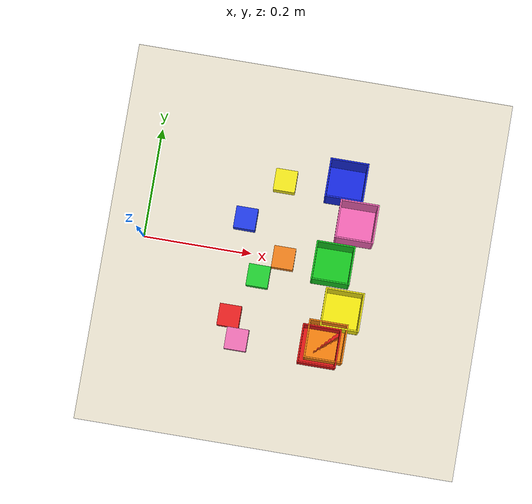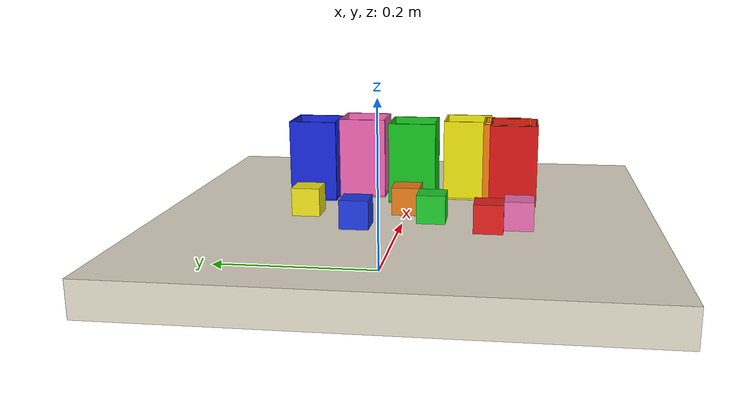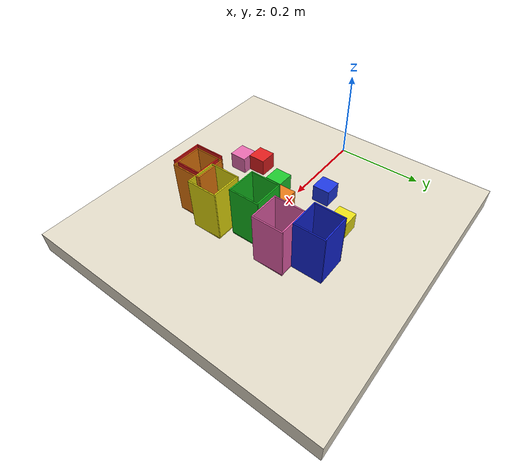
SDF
<?xml version="1.0" ?>
<sdf version="1.6">
<world name="pick_place_world">

  <!-- ════════════════════════════════════════════════════
       工作台
       70cm × 70cm × 5cm，桌面顶面位于 z=0
       pose z=-0.025 使桌体下沿在 z=-0.05
  ════════════════════════════════════════════════════ -->
  <model name="workspace_table">
    <static>true</static>
    <pose>0.28 0.0 -0.025 0 0 0</pose>
    <link name="link">
      <visual name="v">
        <geometry><box><size>0.70 0.70 0.05</size></box></geometry>
        <material>
          <ambient>0.88 0.85 0.78 1</ambient>
          <diffuse>0.88 0.85 0.78 1</diffuse>
          <specular>0.05 0.05 0.05 1</specular>
        </material>
      </visual>
      <collision name="c">
        <geometry><box><size>0.70 0.70 0.05</size></box></geometry>
      </collision>
    </link>
  </model>

  <!-- 方块碰撞/视觉共用：EVA — 哑光、低弹性、略软接触（mu 适中、kp 略低、soft_cfm 略大） -->
  <model name="red_block">
    <pose>0.18 -0.12 0.021 0 0 0</pose>
    <link name="link">
      <inertial>
        <mass>0.025</mass>
        <inertia><ixx>1.042e-5</ixx><ixy>0</ixy><ixz>0</ixz>
                 <iyy>1.042e-5</iyy><iyz>0</iyz><izz>1.042e-5</izz></inertia>
      </inertial>
      <visual name="v">
        <geometry><box><size>0.04 0.04 0.04</size></box></geometry>
        <material>
          <ambient>0.90 0.10 0.10 1</ambient>
          <diffuse>0.88 0.12 0.12 1</diffuse>
          <specular>0.02 0.02 0.02 1</specular>
        </material>
      </visual>
      <collision name="c">
        <geometry><box><size>0.04 0.04 0.04</size></box></geometry>
        <surface><friction><ode><mu>0.75</mu><mu2>0.75</mu2></ode></friction><bounce><restitution_coefficient>0.03</restitution_coefficient><threshold>1e6</threshold></bounce><contact><ode><soft_cfm>0.0025</soft_cfm><soft_erp>0.32</soft_erp><kp>4500</kp><kd>38</kd><max_vel>0.12</max_vel><min_depth>0.002</min_depth></ode></contact></surface>
      </collision>
    </link>
  </model>

  <model name="green_block">
    <pose>0.22 -0.04 0.021 0 0 0</pose>
    <link name="link">
      <inertial>
        <mass>0.025</mass>
        <inertia><ixx>1.042e-5</ixx><ixy>0</ixy><ixz>0</ixz>
                 <iyy>1.042e-5</iyy><iyz>0</iyz><izz>1.042e-5</izz></inertia>
      </inertial>
      <visual name="v">
        <geometry><box><size>0.04 0.04 0.04</size></box></geometry>
        <material>
          <ambient>0.10 0.80 0.15 1</ambient>
          <diffuse>0.12 0.78 0.18 1</diffuse>
          <specular>0.02 0.02 0.02 1</specular>
        </material>
      </visual>
      <collision name="c">
        <geometry><box><size>0.04 0.04 0.04</size></box></geometry>
        <surface><friction><ode><mu>0.75</mu><mu2>0.75</mu2></ode></friction><bounce><restitution_coefficient>0.03</restitution_coefficient><threshold>1e6</threshold></bounce><contact><ode><soft_cfm>0.0025</soft_cfm><soft_erp>0.32</soft_erp><kp>4500</kp><kd>38</kd><max_vel>0.12</max_vel><min_depth>0.002</min_depth></ode></contact></surface>
      </collision>
    </link>
  </model>

  <model name="blue_block">
    <pose>0.18 0.06 0.021 0 0 0</pose>
    <link name="link">
      <inertial>
        <mass>0.025</mass>
        <inertia><ixx>1.042e-5</ixx><ixy>0</ixy><ixz>0</ixz>
                 <iyy>1.042e-5</iyy><iyz>0</iyz><izz>1.042e-5</izz></inertia>
      </inertial>
      <visual name="v">
        <geometry><box><size>0.04 0.04 0.04</size></box></geometry>
        <material>
          <ambient>0.10 0.20 0.90 1</ambient>
          <diffuse>0.12 0.22 0.88 1</diffuse>
          <specular>0.02 0.02 0.02 1</specular>
        </material>
      </visual>
      <collision name="c">
        <geometry><box><size>0.04 0.04 0.04</size></box></geometry>
        <surface><friction><ode><mu>0.75</mu><mu2>0.75</mu2></ode></friction><bounce><restitution_coefficient>0.03</restitution_coefficient><threshold>1e6</threshold></bounce><contact><ode><soft_cfm>0.0025</soft_cfm><soft_erp>0.32</soft_erp><kp>4500</kp><kd>38</kd><max_vel>0.12</max_vel><min_depth>0.002</min_depth></ode></contact></surface>
      </collision>
    </link>
  </model>

  <model name="yellow_block">
    <pose>0.24 0.14 0.021 0 0 0</pose>
    <link name="link">
      <inertial>
        <mass>0.025</mass>
        <inertia><ixx>1.042e-5</ixx><ixy>0</ixy><ixz>0</ixz>
                 <iyy>1.042e-5</iyy><iyz>0</iyz><izz>1.042e-5</izz></inertia>
      </inertial>
      <visual name="v">
        <geometry><box><size>0.04 0.04 0.04</size></box></geometry>
        <material>
          <ambient>0.95 0.90 0.05 1</ambient>
          <diffuse>0.92 0.88 0.10 1</diffuse>
          <specular>0.02 0.02 0.02 1</specular>
        </material>
      </visual>
      <collision name="c">
        <geometry><box><size>0.04 0.04 0.04</size></box></geometry>
        <surface><friction><ode><mu>0.75</mu><mu2>0.75</mu2></ode></friction><bounce><restitution_coefficient>0.03</restitution_coefficient><threshold>1e6</threshold></bounce><contact><ode><soft_cfm>0.0025</soft_cfm><soft_erp>0.32</soft_erp><kp>4500</kp><kd>38</kd><max_vel>0.12</max_vel><min_depth>0.002</min_depth></ode></contact></surface>
      </collision>
    </link>
  </model>

  <model name="pink_block">
    <pose>0.20 -0.16 0.021 0 0 0</pose>
    <link name="link">
      <inertial>
        <mass>0.025</mass>
        <inertia><ixx>1.042e-5</ixx><ixy>0</ixy><ixz>0</ixz>
                 <iyy>1.042e-5</iyy><iyz>0</iyz><izz>1.042e-5</izz></inertia>
      </inertial>
      <visual name="v">
        <geometry><box><size>0.04 0.04 0.04</size></box></geometry>
        <material>
          <ambient>0.95 0.40 0.70 1</ambient>
          <diffuse>0.90 0.42 0.68 1</diffuse>
          <specular>0.02 0.02 0.02 1</specular>
        </material>
      </visual>
      <collision name="c">
        <geometry><box><size>0.04 0.04 0.04</size></box></geometry>
        <surface><friction><ode><mu>0.75</mu><mu2>0.75</mu2></ode></friction><bounce><restitution_coefficient>0.03</restitution_coefficient><threshold>1e6</threshold></bounce><contact><ode><soft_cfm>0.0025</soft_cfm><soft_erp>0.32</soft_erp><kp>4500</kp><kd>38</kd><max_vel>0.12</max_vel><min_depth>0.002</min_depth></ode></contact></surface>
      </collision>
    </link>
  </model>

  <model name="orange_block">
    <pose>0.26 0.00 0.021 0 0 0</pose>
    <link name="link">
      <inertial>
        <mass>0.025</mass>
        <inertia><ixx>1.042e-5</ixx><ixy>0</ixy><ixz>0</ixz>
                 <iyy>1.042e-5</iyy><iyz>0</iyz><izz>1.042e-5</izz></inertia>
      </inertial>
      <visual name="v">
        <geometry><box><size>0.04 0.04 0.04</size></box></geometry>
        <material>
          <ambient>0.95 0.50 0.05 1</ambient>
          <diffuse>0.90 0.48 0.10 1</diffuse>
          <specular>0.02 0.02 0.02 1</specular>
        </material>
      </visual>
      <collision name="c">
        <geometry><box><size>0.04 0.04 0.04</size></box></geometry>
        <surface><friction><ode><mu>0.75</mu><mu2>0.75</mu2></ode></friction><bounce><restitution_coefficient>0.03</restitution_coefficient><threshold>1e6</threshold></bounce><contact><ode><soft_cfm>0.0025</soft_cfm><soft_erp>0.32</soft_erp><kp>4500</kp><kd>38</kd><max_vel>0.12</max_vel><min_depth>0.002</min_depth></ode></contact></surface>
      </collision>
    </link>
  </model>

  <!-- ─────────── RED BIN ─────────── -->
  <model name="red_bin">
    <static>false</static>
    <pose>0.35 -0.15 0.06 0 0 0</pose>
    <link name="link">
      <inertial>
        <mass>0.22</mass>
        <inertia><ixx>2.48e-4</ixx><ixy>0</ixy><ixz>0</ixz><iyy>2.48e-4</iyy><iyz>0</iyz><izz>3.58e-4</izz></inertia>
      </inertial>
      <visual name="bottom_v"><pose>0 0 -0.05875 0 0 0</pose><geometry><box><size>0.07 0.07 0.0025</size></box></geometry><material><ambient>0.85 0.08 0.08 1</ambient><diffuse>0.85 0.08 0.08 1</diffuse></material></visual>
      <visual name="wall_f_v"><pose>0.03375 0 0 0 0 0</pose><geometry><box><size>0.0025 0.07 0.12</size></box></geometry><material><ambient>0.85 0.08 0.08 1</ambient><diffuse>0.85 0.08 0.08 1</diffuse></material></visual>
      <visual name="wall_b_v"><pose>-0.03375 0 0 0 0 0</pose><geometry><box><size>0.0025 0.07 0.12</size></box></geometry><material><ambient>0.85 0.08 0.08 1</ambient><diffuse>0.85 0.08 0.08 1</diffuse></material></visual>
      <visual name="wall_l_v"><pose>0 0.03375 0 0 0 0</pose><geometry><box><size>0.065 0.0025 0.12</size></box></geometry><material><ambient>0.85 0.08 0.08 1</ambient><diffuse>0.85 0.08 0.08 1</diffuse></material></visual>
      <visual name="wall_r_v"><pose>0 -0.03375 0 0 0 0</pose><geometry><box><size>0.065 0.0025 0.12</size></box></geometry><material><ambient>0.85 0.08 0.08 1</ambient><diffuse>0.85 0.08 0.08 1</diffuse></material></visual>

      <collision name="bottom_c"><pose>0 0 -0.05875 0 0 0</pose><geometry><box><size>0.07 0.07 0.0025</size></box></geometry><surface><friction><ode><mu>2.0</mu><mu2>2.0</mu2></ode></friction></surface></collision>
      <collision name="wall_f_c"><pose>0.03375 0 0 0 0 0</pose><geometry><box><size>0.0025 0.07 0.12</size></box></geometry></collision>
      <collision name="wall_b_c"><pose>-0.03375 0 0 0 0 0</pose><geometry><box><size>0.0025 0.07 0.12</size></box></geometry></collision>
      <collision name="wall_l_c"><pose>0 0.03375 0 0 0 0</pose><geometry><box><size>0.065 0.0025 0.12</size></box></geometry></collision>
      <collision name="wall_r_c"><pose>0 -0.03375 0 0 0 0</pose><geometry><box><size>0.065 0.0025 0.12</size></box></geometry></collision>
    </link>
  </model>

  <!-- ─────────── GREEN BIN ─────────── -->
  <model name="green_bin">
    <static>false</static>
    <pose>0.35 0.00 0.06 0 0 0</pose>
    <link name="link">
      <inertial>
        <mass>0.22</mass>
        <inertia><ixx>2.48e-4</ixx><ixy>0</ixy><ixz>0</ixz><iyy>2.48e-4</iyy><iyz>0</iyz><izz>3.58e-4</izz></inertia>
      </inertial>
      <visual name="bottom_v"><pose>0 0 -0.05875 0 0 0</pose><geometry><box><size>0.07 0.07 0.0025</size></box></geometry><material><ambient>0.08 0.75 0.12 1</ambient><diffuse>0.08 0.75 0.12 1</diffuse></material></visual>
      <visual name="wall_f_v"><pose>0.03375 0 0 0 0 0</pose><geometry><box><size>0.0025 0.07 0.12</size></box></geometry><material><ambient>0.08 0.75 0.12 1</ambient><diffuse>0.08 0.75 0.12 1</diffuse></material></visual>
      <visual name="wall_b_v"><pose>-0.03375 0 0 0 0 0</pose><geometry><box><size>0.0025 0.07 0.12</size></box></geometry><material><ambient>0.08 0.75 0.12 1</ambient><diffuse>0.08 0.75 0.12 1</diffuse></material></visual>
      <visual name="wall_l_v"><pose>0 0.03375 0 0 0 0</pose><geometry><box><size>0.065 0.0025 0.12</size></box></geometry><material><ambient>0.08 0.75 0.12 1</ambient><diffuse>0.08 0.75 0.12 1</diffuse></material></visual>
      <visual name="wall_r_v"><pose>0 -0.03375 0 0 0 0</pose><geometry><box><size>0.065 0.0025 0.12</size></box></geometry><material><ambient>0.08 0.75 0.12 1</ambient><diffuse>0.08 0.75 0.12 1</diffuse></material></visual>

      <collision name="bottom_c"><pose>0 0 -0.05875 0 0 0</pose><geometry><box><size>0.07 0.07 0.0025</size></box></geometry><surface><friction><ode><mu>2.0</mu><mu2>2.0</mu2></ode></friction></surface></collision>
      <collision name="wall_f_c"><pose>0.03375 0 0 0 0 0</pose><geometry><box><size>0.0025 0.07 0.12</size></box></geometry></collision>
      <collision name="wall_b_c"><pose>-0.03375 0 0 0 0 0</pose><geometry><box><size>0.0025 0.07 0.12</size></box></geometry></collision>
      <collision name="wall_l_c"><pose>0 0.03375 0 0 0 0</pose><geometry><box><size>0.065 0.0025 0.12</size></box></geometry></collision>
      <collision name="wall_r_c"><pose>0 -0.03375 0 0 0 0</pose><geometry><box><size>0.065 0.0025 0.12</size></box></geometry></collision>
    </link>
  </model>

  <!-- ─────────── BLUE BIN ─────────── -->
  <model name="blue_bin">
    <static>false</static>
    <pose>0.35 0.15 0.06 0 0 0</pose>
    <link name="link">
      <inertial>
        <mass>0.22</mass>
        <inertia><ixx>2.48e-4</ixx><ixy>0</ixy><ixz>0</ixz><iyy>2.48e-4</iyy><iyz>0</iyz><izz>3.58e-4</izz></inertia>
      </inertial>
      <visual name="bottom_v"><pose>0 0 -0.05875 0 0 0</pose><geometry><box><size>0.07 0.07 0.0025</size></box></geometry><material><ambient>0.08 0.15 0.85 1</ambient><diffuse>0.08 0.15 0.85 1</diffuse></material></visual>
      <visual name="wall_f_v"><pose>0.03375 0 0 0 0 0</pose><geometry><box><size>0.0025 0.07 0.12</size></box></geometry><material><ambient>0.08 0.15 0.85 1</ambient><diffuse>0.08 0.15 0.85 1</diffuse></material></visual>
      <visual name="wall_b_v"><pose>-0.03375 0 0 0 0 0</pose><geometry><box><size>0.0025 0.07 0.12</size></box></geometry><material><ambient>0.08 0.15 0.85 1</ambient><diffuse>0.08 0.15 0.85 1</diffuse></material></visual>
      <visual name="wall_l_v"><pose>0 0.03375 0 0 0 0</pose><geometry><box><size>0.065 0.0025 0.12</size></box></geometry><material><ambient>0.08 0.15 0.85 1</ambient><diffuse>0.08 0.15 0.85 1</diffuse></material></visual>
      <visual name="wall_r_v"><pose>0 -0.03375 0 0 0 0</pose><geometry><box><size>0.065 0.0025 0.12</size></box></geometry><material><ambient>0.08 0.15 0.85 1</ambient><diffuse>0.08 0.15 0.85 1</diffuse></material></visual>

      <collision name="bottom_c"><pose>0 0 -0.05875 0 0 0</pose><geometry><box><size>0.07 0.07 0.0025</size></box></geometry><surface><friction><ode><mu>2.0</mu><mu2>2.0</mu2></ode></friction></surface></collision>
      <collision name="wall_f_c"><pose>0.03375 0 0 0 0 0</pose><geometry><box><size>0.0025 0.07 0.12</size></box></geometry></collision>
      <collision name="wall_b_c"><pose>-0.03375 0 0 0 0 0</pose><geometry><box><size>0.0025 0.07 0.12</size></box></geometry></collision>
      <collision name="wall_l_c"><pose>0 0.03375 0 0 0 0</pose><geometry><box><size>0.065 0.0025 0.12</size></box></geometry></collision>
      <collision name="wall_r_c"><pose>0 -0.03375 0 0 0 0</pose><geometry><box><size>0.065 0.0025 0.12</size></box></geometry></collision>
    </link>
  </model>

  <!-- ─────────── YELLOW BIN ─────────── -->
  <model name="yellow_bin">
    <static>false</static>
    <pose>0.38 -0.08 0.06 0 0 0</pose>
    <link name="link">
      <inertial>
        <mass>0.22</mass>
        <inertia><ixx>2.48e-4</ixx><ixy>0</ixy><ixz>0</ixz><iyy>2.48e-4</iyy><iyz>0</iyz><izz>3.58e-4</izz></inertia>
      </inertial>
      <visual name="bottom_v"><pose>0 0 -0.05875 0 0 0</pose><geometry><box><size>0.07 0.07 0.0025</size></box></geometry><material><ambient>0.92 0.88 0.05 1</ambient><diffuse>0.92 0.88 0.05 1</diffuse></material></visual>
      <visual name="wall_f_v"><pose>0.03375 0 0 0 0 0</pose><geometry><box><size>0.0025 0.07 0.12</size></box></geometry><material><ambient>0.92 0.88 0.05 1</ambient><diffuse>0.92 0.88 0.05 1</diffuse></material></visual>
      <visual name="wall_b_v"><pose>-0.03375 0 0 0 0 0</pose><geometry><box><size>0.0025 0.07 0.12</size></box></geometry><material><ambient>0.92 0.88 0.05 1</ambient><diffuse>0.92 0.88 0.05 1</diffuse></material></visual>
      <visual name="wall_l_v"><pose>0 0.03375 0 0 0 0</pose><geometry><box><size>0.065 0.0025 0.12</size></box></geometry><material><ambient>0.92 0.88 0.05 1</ambient><diffuse>0.92 0.88 0.05 1</diffuse></material></visual>
      <visual name="wall_r_v"><pose>0 -0.03375 0 0 0 0</pose><geometry><box><size>0.065 0.0025 0.12</size></box></geometry><material><ambient>0.92 0.88 0.05 1</ambient><diffuse>0.92 0.88 0.05 1</diffuse></material></visual>

      <collision name="bottom_c"><pose>0 0 -0.05875 0 0 0</pose><geometry><box><size>0.07 0.07 0.0025</size></box></geometry><surface><friction><ode><mu>2.0</mu><mu2>2.0</mu2></ode></friction></surface></collision>
      <collision name="wall_f_c"><pose>0.03375 0 0 0 0 0</pose><geometry><box><size>0.0025 0.07 0.12</size></box></geometry></collision>
      <collision name="wall_b_c"><pose>-0.03375 0 0 0 0 0</pose><geometry><box><size>0.0025 0.07 0.12</size></box></geometry></collision>
      <collision name="wall_l_c"><pose>0 0.03375 0 0 0 0</pose><geometry><box><size>0.065 0.0025 0.12</size></box></geometry></collision>
      <collision name="wall_r_c"><pose>0 -0.03375 0 0 0 0</pose><geometry><box><size>0.065 0.0025 0.12</size></box></geometry></collision>
    </link>
  </model>

  <!-- ─────────── PINK BIN ─────────── -->
  <model name="pink_bin">
    <static>false</static>
    <pose>0.38 0.08 0.06 0 0 0</pose>
    <link name="link">
      <inertial>
        <mass>0.22</mass>
        <inertia><ixx>2.48e-4</ixx><ixy>0</ixy><ixz>0</ixz><iyy>2.48e-4</iyy><iyz>0</iyz><izz>3.58e-4</izz></inertia>
      </inertial>
      <visual name="bottom_v"><pose>0 0 -0.05875 0 0 0</pose><geometry><box><size>0.07 0.07 0.0025</size></box></geometry><material><ambient>0.92 0.38 0.68 1</ambient><diffuse>0.92 0.38 0.68 1</diffuse></material></visual>
      <visual name="wall_f_v"><pose>0.03375 0 0 0 0 0</pose><geometry><box><size>0.0025 0.07 0.12</size></box></geometry><material><ambient>0.92 0.38 0.68 1</ambient><diffuse>0.92 0.38 0.68 1</diffuse></material></visual>
      <visual name="wall_b_v"><pose>-0.03375 0 0 0 0 0</pose><geometry><box><size>0.0025 0.07 0.12</size></box></geometry><material><ambient>0.92 0.38 0.68 1</ambient><diffuse>0.92 0.38 0.68 1</diffuse></material></visual>
      <visual name="wall_l_v"><pose>0 0.03375 0 0 0 0</pose><geometry><box><size>0.065 0.0025 0.12</size></box></geometry><material><ambient>0.92 0.38 0.68 1</ambient><diffuse>0.92 0.38 0.68 1</diffuse></material></visual>
      <visual name="wall_r_v"><pose>0 -0.03375 0 0 0 0</pose><geometry><box><size>0.065 0.0025 0.12</size></box></geometry><material><ambient>0.92 0.38 0.68 1</ambient><diffuse>0.92 0.38 0.68 1</diffuse></material></visual>

      <collision name="bottom_c"><pose>0 0 -0.05875 0 0 0</pose><geometry><box><size>0.07 0.07 0.0025</size></box></geometry><surface><friction><ode><mu>2.0</mu><mu2>2.0</mu2></ode></friction></surface></collision>
      <collision name="wall_f_c"><pose>0.03375 0 0 0 0 0</pose><geometry><box><size>0.0025 0.07 0.12</size></box></geometry></collision>
      <collision name="wall_b_c"><pose>-0.03375 0 0 0 0 0</pose><geometry><box><size>0.0025 0.07 0.12</size></box></geometry></collision>
      <collision name="wall_l_c"><pose>0 0.03375 0 0 0 0</pose><geometry><box><size>0.065 0.0025 0.12</size></box></geometry></collision>
      <collision name="wall_r_c"><pose>0 -0.03375 0 0 0 0</pose><geometry><box><size>0.065 0.0025 0.12</size></box></geometry></collision>
    </link>
  </model>

  <!-- ─────────── ORANGE BIN ─────────── -->
  <model name="orange_bin">
    <static>false</static>
    <pose>0.36 -0.14 0.06 0 0 0</pose>
    <link name="link">
      <inertial>
        <mass>0.22</mass>
        <inertia><ixx>2.48e-4</ixx><ixy>0</ixy><ixz>0</ixz><iyy>2.48e-4</iyy><iyz>0</iyz><izz>3.58e-4</izz></inertia>
      </inertial>
      <visual name="bottom_v"><pose>0 0 -0.05875 0 0 0</pose><geometry><box><size>0.07 0.07 0.0025</size></box></geometry><material><ambient>0.92 0.48 0.05 1</ambient><diffuse>0.92 0.48 0.05 1</diffuse></material></visual>
      <visual name="wall_f_v"><pose>0.03375 0 0 0 0 0</pose><geometry><box><size>0.0025 0.07 0.12</size></box></geometry><material><ambient>0.92 0.48 0.05 1</ambient><diffuse>0.92 0.48 0.05 1</diffuse></material></visual>
      <visual name="wall_b_v"><pose>-0.03375 0 0 0 0 0</pose><geometry><box><size>0.0025 0.07 0.12</size></box></geometry><material><ambient>0.92 0.48 0.05 1</ambient><diffuse>0.92 0.48 0.05 1</diffuse></material></visual>
      <visual name="wall_l_v"><pose>0 0.03375 0 0 0 0</pose><geometry><box><size>0.065 0.0025 0.12</size></box></geometry><material><ambient>0.92 0.48 0.05 1</ambient><diffuse>0.92 0.48 0.05 1</diffuse></material></visual>
      <visual name="wall_r_v"><pose>0 -0.03375 0 0 0 0</pose><geometry><box><size>0.065 0.0025 0.12</size></box></geometry><material><ambient>0.92 0.48 0.05 1</ambient><diffuse>0.92 0.48 0.05 1</diffuse></material></visual>

      <collision name="bottom_c"><pose>0 0 -0.05875 0 0 0</pose><geometry><box><size>0.07 0.07 0.0025</size></box></geometry><surface><friction><ode><mu>2.0</mu><mu2>2.0</mu2></ode></friction></surface></collision>
      <collision name="wall_f_c"><pose>0.03375 0 0 0 0 0</pose><geometry><box><size>0.0025 0.07 0.12</size></box></geometry></collision>
      <collision name="wall_b_c"><pose>-0.03375 0 0 0 0 0</pose><geometry><box><size>0.0025 0.07 0.12</size></box></geometry></collision>
      <collision name="wall_l_c"><pose>0 0.03375 0 0 0 0</pose><geometry><box><size>0.065 0.0025 0.12</size></box></geometry></collision>
      <collision name="wall_r_c"><pose>0 -0.03375 0 0 0 0</pose><geometry><box><size>0.065 0.0025 0.12</size></box></geometry></collision>
    </link>
  </model>

</world>
</sdf>
